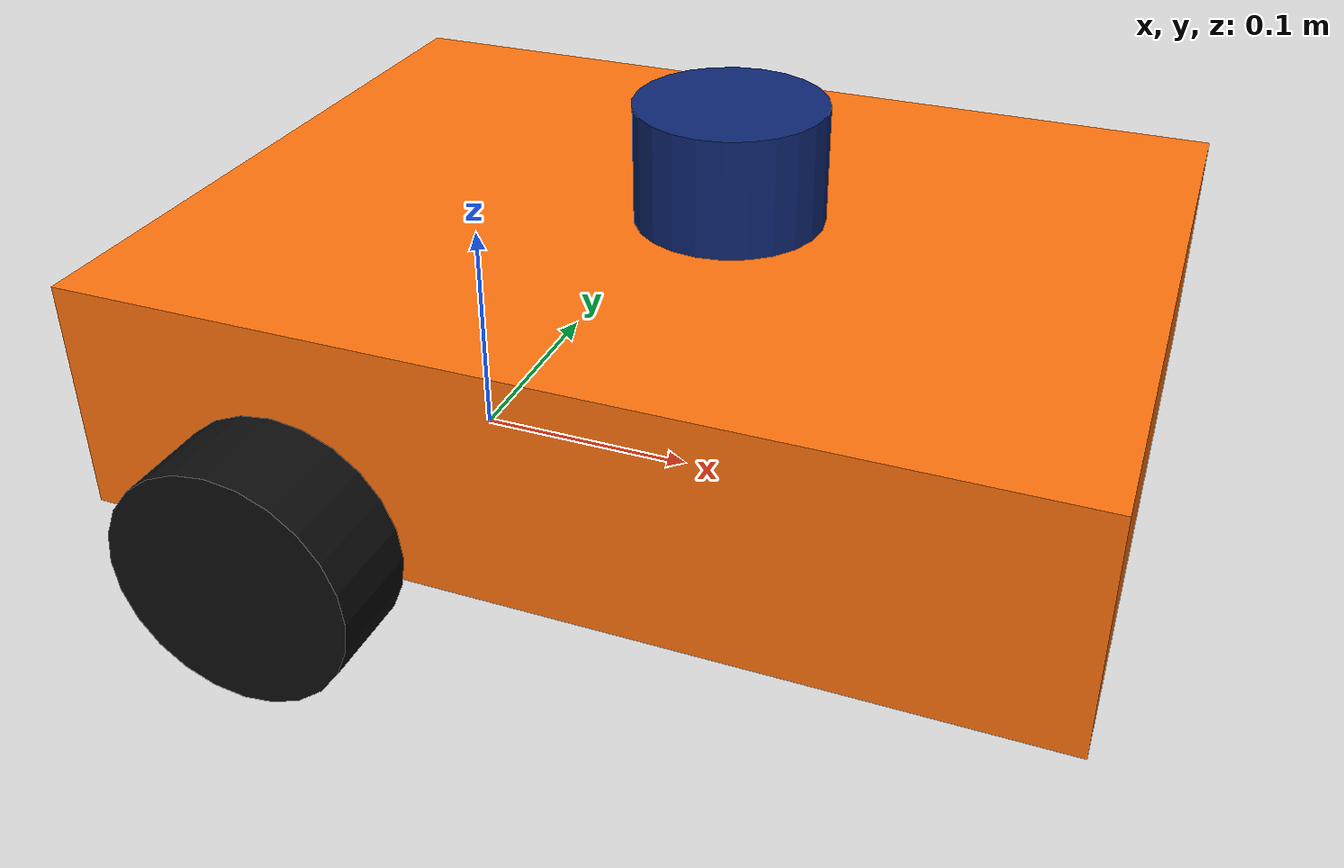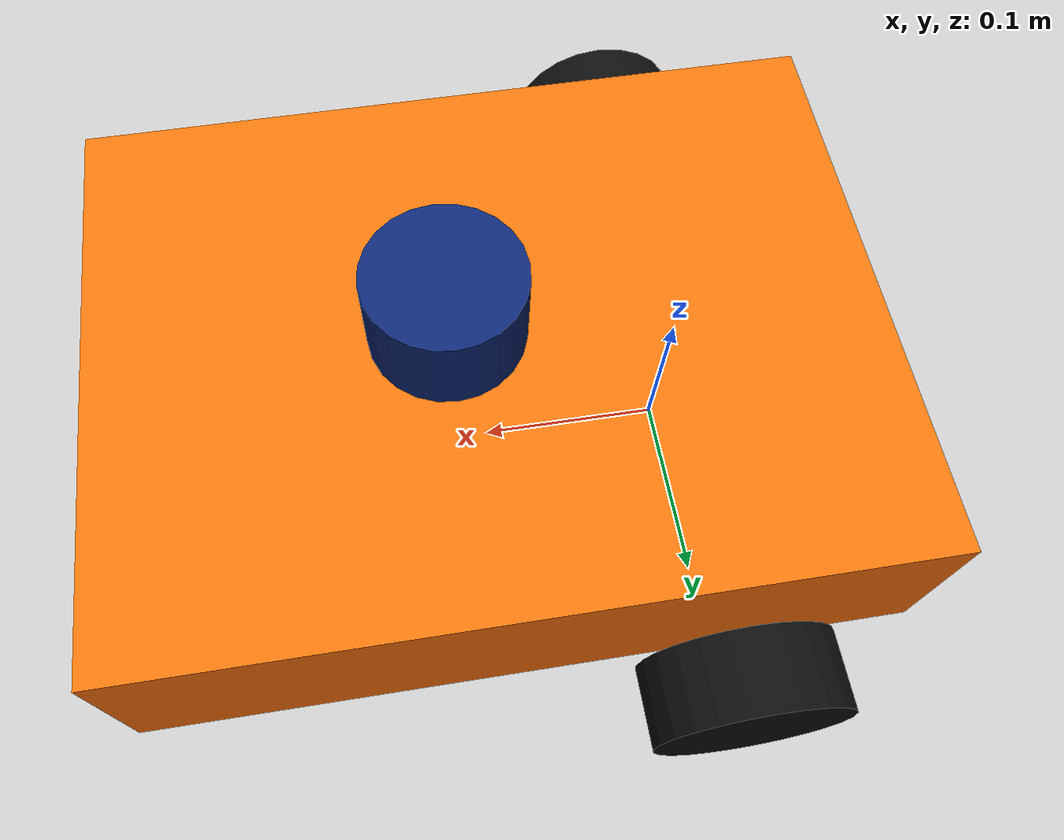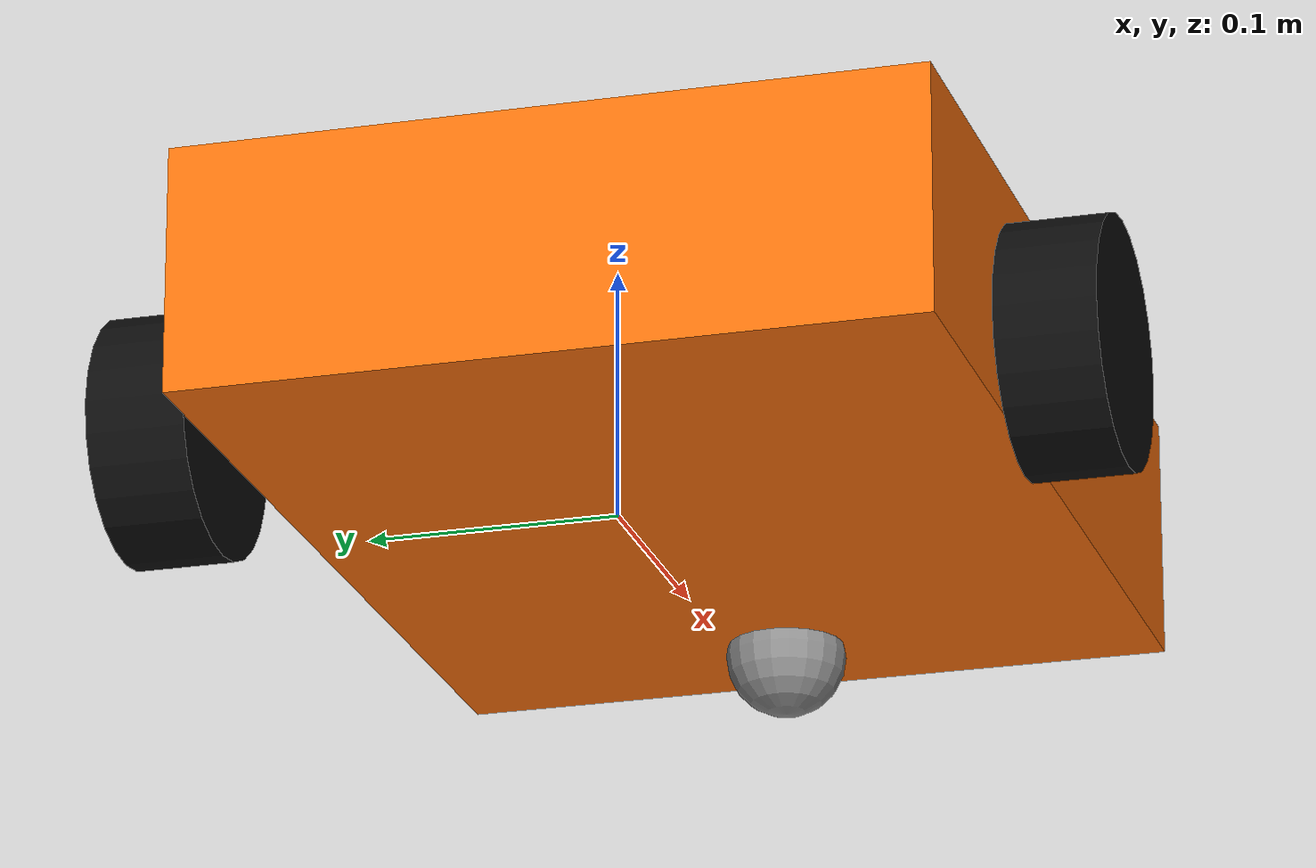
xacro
<?xml version="1.0"?>
<robot name="robot_splunker" xmlns:xacro="http://www.ros.org/wiki/xacro">

  <xacro:include filename="properties.xacro"/>
  <xacro:include filename="inertial_macros.xacro"/>
  <xacro:include filename="robot_splunker.gazebo.xacro"/>

  <!-- ================= base_footprint / base_link ================= -->
  <!-- base_footprint has no geometry or mass; it is the frame Nav2/SLAM use. -->
  <link name="base_footprint"/>

  <joint name="base_joint" type="fixed">
    <parent link="base_footprint"/>
    <child link="base_link"/>
    <origin xyz="0 0 ${wheel_radius}" rpy="0 0 0"/>
  </joint>

  <!-- base_link is a pure frame at the wheel axle centre (rotation centre). -->
  <link name="base_link"/>

  <!-- ================= Chassis ================= -->
  <joint name="chassis_joint" type="fixed">
    <parent link="base_link"/>
    <child link="chassis"/>
    <origin xyz="${chassis_x_offset} 0 ${chassis_z_offset}" rpy="0 0 0"/>
  </joint>

  <link name="chassis">
    <visual>
      <geometry><box size="${chassis_length} ${chassis_width} ${chassis_height}"/></geometry>
      <material name="splunker_orange"/>
    </visual>
    <collision>
      <geometry><box size="${chassis_length} ${chassis_width} ${chassis_height}"/></geometry>
    </collision>
    <xacro:box_inertia m="${chassis_mass}" x="${chassis_length}" y="${chassis_width}" z="${chassis_height}"/>
  </link>

  <!-- ================= Drive wheels ================= -->
  <xacro:macro name="wheel" params="prefix reflect">
    <joint name="${prefix}_wheel_joint" type="continuous">
      <parent link="base_link"/>
      <child link="${prefix}_wheel"/>
      <origin xyz="0 ${reflect * wheel_separation / 2} 0" rpy="0 0 0"/>
      <axis xyz="0 1 0"/>
      <dynamics damping="0.01" friction="0.0"/>
    </joint>

    <link name="${prefix}_wheel">
      <visual>
        <origin xyz="0 0 0" rpy="${-pi/2} 0 0"/>
        <geometry><cylinder radius="${wheel_radius}" length="${wheel_width}"/></geometry>
        <material name="splunker_black"/>
      </visual>
      <collision>
        <origin xyz="0 0 0" rpy="${-pi/2} 0 0"/>
        <geometry><cylinder radius="${wheel_radius}" length="${wheel_width}"/></geometry>
      </collision>
      <xacro:cylinder_inertia m="${wheel_mass}" r="${wheel_radius}" h="${wheel_width}" rpy="${-pi/2} 0 0"/>
    </link>
  </xacro:macro>

  <xacro:wheel prefix="left"  reflect="1"/>
  <xacro:wheel prefix="right" reflect="-1"/>

  <!-- ================= Front caster ================= -->
  <joint name="caster_joint" type="fixed">
    <parent link="base_link"/>
    <child link="caster_link"/>
    <origin xyz="${caster_x} 0 ${caster_radius - wheel_radius}" rpy="0 0 0"/>
  </joint>

  <link name="caster_link">
    <visual>
      <geometry><sphere radius="${caster_radius}"/></geometry>
      <material name="splunker_grey"/>
    </visual>
    <collision>
      <geometry><sphere radius="${caster_radius}"/></geometry>
    </collision>
    <xacro:sphere_inertia m="${caster_mass}" r="${caster_radius}"/>
  </link>

  <!-- ================= Sensors ================= -->
  <xacro:include filename="sensors.xacro"/>

</robot>

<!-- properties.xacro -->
<robot xmlns:xacro="http://www.ros.org/wiki/xacro">

  <!-- ===== Chassis (box body) ===== -->
  <xacro:property name="chassis_length" value="0.40"/>
  <xacro:property name="chassis_width"  value="0.30"/>
  <xacro:property name="chassis_height" value="0.10"/>
  <xacro:property name="chassis_mass"   value="2.0"/>
  <!-- Chassis centre relative to base_link: the drive wheels sit 0.10 m behind the
       chassis centre, so the front caster carries part of the weight. -->
  <xacro:property name="chassis_x_offset" value="0.10"/>
  <!-- Ground clearance 0.03 m: centre z (above ground) = 0.03 + h/2 = 0.08,
       relative to base_link (0.05 above ground) = 0.03 -->
  <xacro:property name="chassis_z_offset" value="0.03"/>

  <!-- ===== Drive wheels (cylinders) ===== -->
  <xacro:property name="wheel_radius"     value="0.05"/>
  <xacro:property name="wheel_width"      value="0.04"/>
  <xacro:property name="wheel_mass"       value="0.2"/>
  <!-- Centre-to-centre distance between the wheels (also used by the DiffDrive plugin).
       0.36 leaves a 1 cm gap between each wheel and the 0.30 m wide chassis. -->
  <xacro:property name="wheel_separation" value="0.36"/>

  <!-- ===== Front caster (sphere) ===== -->
  <xacro:property name="caster_radius" value="0.025"/>
  <xacro:property name="caster_mass"   value="0.05"/>
  <!-- 0.15 m in front of the chassis centre = 0.25 m in front of the axle -->
  <xacro:property name="caster_x"      value="${chassis_x_offset + 0.15}"/>

  <!-- ===== 2D lidar (cylinder "puck" on top of the chassis) ===== -->
  <xacro:property name="lidar_radius" value="0.04"/>
  <xacro:property name="lidar_height" value="0.05"/>
  <xacro:property name="lidar_mass"   value="0.1"/>
  <xacro:property name="lidar_x"      value="0.12"/>
  <!-- sits on the chassis top: chassis_z_offset + chassis_height/2 + lidar_height/2 -->
  <xacro:property name="lidar_z"      value="${chassis_z_offset + chassis_height/2 + lidar_height/2}"/>
  <xacro:property name="lidar_min_range" value="0.12"/>
  <xacro:property name="lidar_max_range" value="12.0"/>
  <xacro:property name="lidar_samples"   value="360"/>
  <xacro:property name="lidar_rate"      value="10"/>

  <!-- ===== IMU (small box at the chassis centre) ===== -->
  <xacro:property name="imu_size" value="0.02"/>
  <xacro:property name="imu_mass" value="0.01"/>
  <xacro:property name="imu_rate" value="100"/>

  <!-- ===== Motion limits (DiffDrive plugin) ===== -->
  <xacro:property name="max_linear_velocity"      value="0.6"/>
  <xacro:property name="max_angular_velocity"     value="2.0"/>
  <xacro:property name="max_linear_acceleration"  value="1.0"/>
  <xacro:property name="max_angular_acceleration" value="3.0"/>

</robot>

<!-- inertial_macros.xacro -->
<robot xmlns:xacro="http://www.ros.org/wiki/xacro">

  <xacro:macro name="box_inertia" params="m x y z xyz:='0 0 0' rpy:='0 0 0'">
    <inertial>
      <origin xyz="${xyz}" rpy="${rpy}"/>
      <mass value="${m}"/>
      <inertia ixx="${m*(y*y + z*z)/12.0}" ixy="0.0" ixz="0.0"
               iyy="${m*(x*x + z*z)/12.0}" iyz="0.0"
               izz="${m*(x*x + y*y)/12.0}"/>
    </inertial>
  </xacro:macro>

  <xacro:macro name="cylinder_inertia" params="m r h xyz:='0 0 0' rpy:='0 0 0'">
    <inertial>
      <origin xyz="${xyz}" rpy="${rpy}"/>
      <mass value="${m}"/>
      <inertia ixx="${m*(3*r*r + h*h)/12.0}" ixy="0.0" ixz="0.0"
               iyy="${m*(3*r*r + h*h)/12.0}" iyz="0.0"
               izz="${m*r*r/2.0}"/>
    </inertial>
  </xacro:macro>

  <xacro:macro name="sphere_inertia" params="m r xyz:='0 0 0' rpy:='0 0 0'">
    <inertial>
      <origin xyz="${xyz}" rpy="${rpy}"/>
      <mass value="${m}"/>
      <inertia ixx="${2.0*m*r*r/5.0}" ixy="0.0" ixz="0.0"
               iyy="${2.0*m*r*r/5.0}" iyz="0.0"
               izz="${2.0*m*r*r/5.0}"/>
    </inertial>
  </xacro:macro>

</robot>

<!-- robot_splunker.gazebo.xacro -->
<robot xmlns:xacro="http://www.ros.org/wiki/xacro">

  <!-- ============================================================
       1. Colours  (RGBA 0..1)
       ============================================================ -->
  <xacro:property name="color_orange" value="1.0 0.45 0.05 1"/>
  <xacro:property name="color_black"  value="0.05 0.05 0.05 1"/>
  <xacro:property name="color_grey"   value="0.55 0.55 0.55 1"/>
  <xacro:property name="color_blue"   value="0.05 0.15 0.45 1"/>

  <!-- URDF materials (used by RViz and as a fallback by the URDF->SDF converter). -->
  <material name="splunker_orange"><color rgba="${color_orange}"/></material>
  <material name="splunker_black"><color rgba="${color_black}"/></material>
  <material name="splunker_grey"><color rgba="${color_grey}"/></material>
  <material name="splunker_blue"><color rgba="${color_blue}"/></material>

  <!-- gz_color: Gazebo visual material block for one link.
       ambient = base colour, diffuse = lit colour, specular = shininess highlight. -->
  <xacro:macro name="gz_color" params="link rgba specular:='0.2 0.2 0.2 1'">
    <gazebo reference="${link}">
      <visual>
        <material>
          <ambient>${rgba}</ambient>
          <diffuse>${rgba}</diffuse>
          <specular>${specular}</specular>
        </material>
      </visual>
    </gazebo>
  </xacro:macro>

  <!-- ============================================================
       2. Per-link colours in Gazebo
       ============================================================ -->
  <xacro:gz_color link="chassis"     rgba="${color_orange}" specular="0.5 0.5 0.5 1"/>
  <xacro:gz_color link="left_wheel"  rgba="${color_black}"  specular="0.05 0.05 0.05 1"/>
  <xacro:gz_color link="right_wheel" rgba="${color_black}"  specular="0.05 0.05 0.05 1"/>
  <xacro:gz_color link="caster_link" rgba="${color_grey}"   specular="0.8 0.8 0.8 1"/>
  <xacro:gz_color link="lidar_link"  rgba="${color_blue}"/>
  <xacro:gz_color link="imu_link"    rgba="${color_grey}"/>

  <gazebo reference="left_wheel">
    <mu1>1.0</mu1>
    <mu2>1.0</mu2>
    <kp>1000000.0</kp>
    <kd>100.0</kd>
  </gazebo>
  <gazebo reference="right_wheel">
    <mu1>1.0</mu1>
    <mu2>1.0</mu2>
    <kp>1000000.0</kp>
    <kd>100.0</kd>
  </gazebo>
  <!-- Frictionless caster: it slides like a ball caster. -->
  <gazebo reference="caster_link">
    <mu1>0.0</mu1>
    <mu2>0.0</mu2>
  </gazebo>

  <!-- ============================================================
       4. Model plugins
       ============================================================ -->
  <gazebo>
    <!-- Differential drive: subscribes to Twist on cmd_vel, drives the two wheel joints,
         publishes odometry on odom and the odom -> base_footprint transform on tf. -->
    <plugin filename="gz-sim-diff-drive-system" name="gz::sim::systems::DiffDrive">
      <left_joint>left_wheel_joint</left_joint>
      <right_joint>right_wheel_joint</right_joint>
      <wheel_separation>${wheel_separation}</wheel_separation>
      <wheel_radius>${wheel_radius}</wheel_radius>
      <max_linear_acceleration>${max_linear_acceleration}</max_linear_acceleration>
      <min_linear_acceleration>${-max_linear_acceleration}</min_linear_acceleration>
      <max_angular_acceleration>${max_angular_acceleration}</max_angular_acceleration>
      <min_angular_acceleration>${-max_angular_acceleration}</min_angular_acceleration>
      <max_linear_velocity>${max_linear_velocity}</max_linear_velocity>
      <min_linear_velocity>${-max_linear_velocity}</min_linear_velocity>
      <max_angular_velocity>${max_angular_velocity}</max_angular_velocity>
      <min_angular_velocity>${-max_angular_velocity}</min_angular_velocity>
      <topic>cmd_vel</topic>
      <odom_topic>odom</odom_topic>
      <tf_topic>tf</tf_topic>
      <frame_id>odom</frame_id>
      <child_frame_id>base_footprint</child_frame_id>
      <odom_publisher_frequency>30</odom_publisher_frequency>
    </plugin>

    <!-- Publishes the wheel joint angles (bridged to /joint_states so
         robot_state_publisher can place the wheel frames, and Unreal can spin them). -->
    <plugin filename="gz-sim-joint-state-publisher-system" name="gz::sim::systems::JointStatePublisher">
      <topic>joint_states</topic>
      <joint_name>left_wheel_joint</joint_name>
      <joint_name>right_wheel_joint</joint_name>
    </plugin>

    <plugin filename="gz-sim-odometry-publisher-system" name="gz::sim::systems::OdometryPublisher">
      <odom_frame>world</odom_frame>
      <robot_base_frame>base_footprint</robot_base_frame>
      <odom_topic>ground_truth/odom</odom_topic>
      <tf_topic>ground_truth/tf</tf_topic>
      <odom_publish_frequency>50</odom_publish_frequency>
      <dimensions>3</dimensions>
    </plugin>
  </gazebo>

  <!-- ============================================================
       5. Sensors
       ============================================================ -->
  <!-- 2D 360° lidar: 360 rays, 1° apart, 0.12..12 m, 10 Hz, small gaussian noise.
       Requires the gz-sim-sensors-system (ogre2) plugin in the world. -->
  <gazebo reference="lidar_link">
    <sensor name="lidar" type="gpu_lidar">
      <topic>scan</topic>
      <gz_frame_id>lidar_link</gz_frame_id>
      <update_rate>${lidar_rate}</update_rate>
      <always_on>true</always_on>
      <visualize>true</visualize>
      <lidar>
        <scan>
          <horizontal>
            <samples>${lidar_samples}</samples>
            <resolution>1</resolution>
            <min_angle>${-pi}</min_angle>
            <max_angle>${pi - 2*pi/lidar_samples}</max_angle>
          </horizontal>
          <vertical>
            <samples>1</samples>
            <resolution>1</resolution>
            <min_angle>0</min_angle>
            <max_angle>0</max_angle>
          </vertical>
        </scan>
        <range>
          <min>${lidar_min_range}</min>
          <max>${lidar_max_range}</max>
          <resolution>0.01</resolution>
        </range>
        <noise>
          <type>gaussian</type>
          <mean>0.0</mean>
          <stddev>0.01</stddev>
        </noise>
      </lidar>
    </sensor>
  </gazebo>

  <!-- IMU: angular velocity + linear acceleration + orientation at 100 Hz.
       Requires the gz-sim-imu-system plugin in the world. -->
  <gazebo reference="imu_link">
    <sensor name="imu" type="imu">
      <topic>imu</topic>
      <gz_frame_id>imu_link</gz_frame_id>
      <update_rate>${imu_rate}</update_rate>
      <always_on>true</always_on>
      <visualize>false</visualize>
    </sensor>
  </gazebo>

</robot>

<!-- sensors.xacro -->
<robot xmlns:xacro="http://www.ros.org/wiki/xacro">

  <!-- ================= 2D lidar ================= -->
  <joint name="lidar_joint" type="fixed">
    <parent link="base_link"/>
    <child link="lidar_link"/>
    <origin xyz="${lidar_x} 0 ${lidar_z}" rpy="0 0 0"/>
  </joint>

  <link name="lidar_link">
    <visual>
      <geometry><cylinder radius="${lidar_radius}" length="${lidar_height}"/></geometry>
      <material name="splunker_blue"/>
    </visual>
    <collision>
      <geometry><cylinder radius="${lidar_radius}" length="${lidar_height}"/></geometry>
    </collision>
    <xacro:cylinder_inertia m="${lidar_mass}" r="${lidar_radius}" h="${lidar_height}"/>
  </link>

  <!-- ================= IMU ================= -->
  <joint name="imu_joint" type="fixed">
    <parent link="base_link"/>
    <child link="imu_link"/>
    <origin xyz="${chassis_x_offset} 0 ${chassis_z_offset}" rpy="0 0 0"/>
  </joint>

  <link name="imu_link">
    <visual>
      <geometry><box size="${imu_size} ${imu_size} ${imu_size}"/></geometry>
      <material name="splunker_grey"/>
    </visual>
    <xacro:box_inertia m="${imu_mass}" x="${imu_size}" y="${imu_size}" z="${imu_size}"/>
  </link>

</robot>
